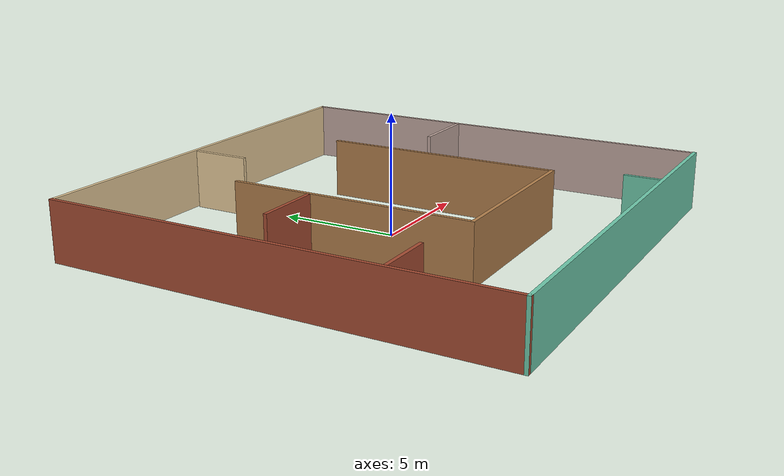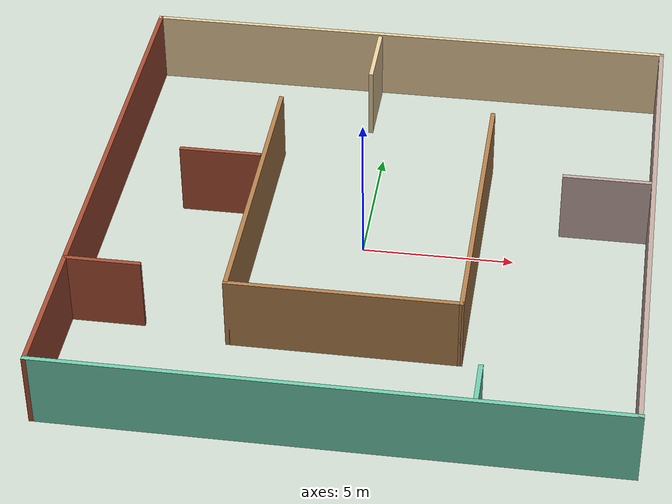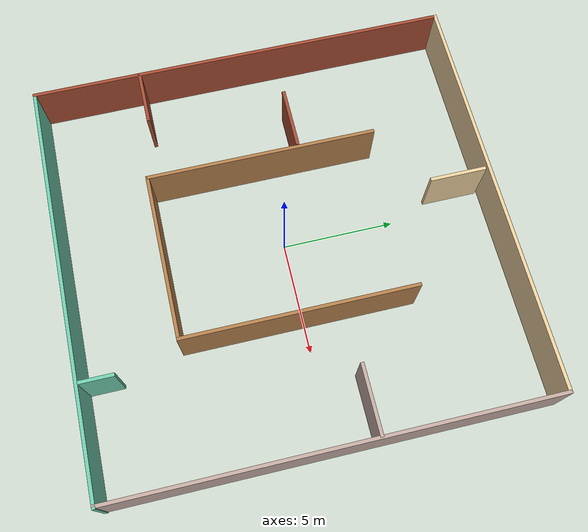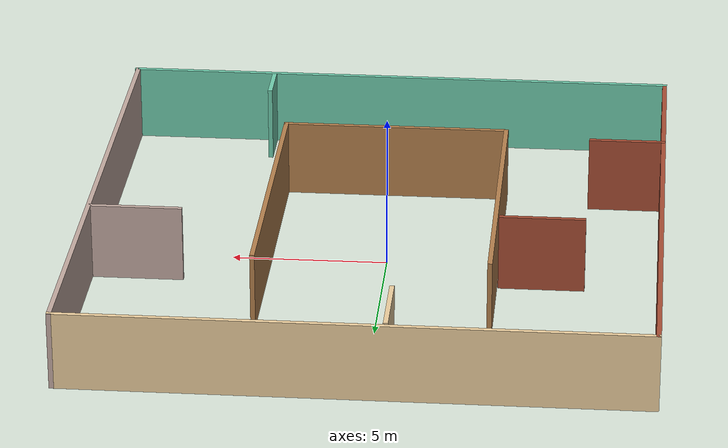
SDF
<?xml version='1.0'?>
<sdf version='1.6'>
  <model name='test_building'>
    <pose frame=''>0.322349 -0.088201 0 0 -0 0</pose>
    <link name='Wall_1'>
      <collision name='Wall_1_Collision'>
        <geometry>
          <box>
            <size>19 0.15 2.5</size>
          </box>
        </geometry>
        <pose frame=''>0 0 1.25 0 -0 0</pose>
      </collision>
      <visual name='Wall_1_Visual'>
        <pose frame=''>0 0 1.25 0 -0 0</pose>
        <geometry>
          <box>
            <size>19 0.15 2.5</size>
          </box>
        </geometry>
        <material>
          <script>
            <uri>file://media/materials/scripts/gazebo.material</uri>
            <name>Gazebo/Grey</name>
          </script>
          <ambient>0.760784 0.662745 0.627451 1</ambient>
        </material>
      </visual>
      <pose frame=''>9.06759 0 0 0 0 -1.5708</pose>
    </link>
    <link name='Wall_10'>
      <collision name='Wall_10_Collision'>
        <geometry>
          <box>
            <size>7.5 0.15 2.5</size>
          </box>
        </geometry>
        <pose frame=''>0 0 1.25 0 -0 0</pose>
      </collision>
      <visual name='Wall_10_Visual'>
        <pose frame=''>0 0 1.25 0 -0 0</pose>
        <geometry>
          <box>
            <size>7.5 0.15 2.5</size>
          </box>
        </geometry>
        <material>
          <script>
            <uri>file://media/materials/scripts/gazebo.material</uri>
            <name>Gazebo/Wood</name>
          </script>
          <ambient>1 1 1 1</ambient>
        </material>
      </visual>
      <pose frame=''>-0.203696 -5.16672 0 0 -0 0</pose>
    </link>
    <link name='Wall_11'>
      <collision name='Wall_11_Collision'>
        <geometry>
          <box>
            <size>10.25 0.15 2.5</size>
          </box>
        </geometry>
        <pose frame=''>0 0 1.25 0 -0 0</pose>
      </collision>
      <visual name='Wall_11_Visual'>
        <pose frame=''>0 0 1.25 0 -0 0</pose>
        <geometry>
          <box>
            <size>10.25 0.15 2.5</size>
          </box>
        </geometry>
        <material>
          <script>
            <uri>file://media/materials/scripts/gazebo.material</uri>
            <name>Gazebo/Wood</name>
          </script>
          <ambient>1 1 1 1</ambient>
        </material>
      </visual>
      <pose frame=''>3.4713 -0.116718 0 0 -0 1.5708</pose>
    </link>
    <link name='Wall_13'>
      <collision name='Wall_13_Collision'>
        <geometry>
          <box>
            <size>3 0.15 2.5</size>
          </box>
        </geometry>
        <pose frame=''>0 0 1.25 0 -0 0</pose>
      </collision>
      <visual name='Wall_13_Visual'>
        <pose frame=''>0 0 1.25 0 -0 0</pose>
        <geometry>
          <box>
            <size>3 0.15 2.5</size>
          </box>
        </geometry>
        <material>
          <script>
            <uri>file://media/materials/scripts/gazebo.material</uri>
            <name>Gazebo/Grey</name>
          </script>
          <ambient>0.760784 0.662745 0.627451 1</ambient>
        </material>
      </visual>
      <pose frame=''>7.57173 1.76719 0 0 -0 3.14159</pose>
    </link>
    <link name='Wall_15'>
      <collision name='Wall_15_Collision'>
        <geometry>
          <box>
            <size>2.75 0.15 2.5</size>
          </box>
        </geometry>
        <pose frame=''>0 0 1.25 0 -0 0</pose>
      </collision>
      <visual name='Wall_15_Visual'>
        <pose frame=''>0 0 1.25 0 -0 0</pose>
        <geometry>
          <box>
            <size>2.75 0.15 2.5</size>
          </box>
        </geometry>
        <material>
          <script>
            <uri>file://media/materials/scripts/gazebo.material</uri>
            <name>Gazebo/Bricks</name>
          </script>
          <ambient>1 1 1 1</ambient>
        </material>
      </visual>
      <pose frame=''>-5.35834 1.55612 0 0 -0 3.14159</pose>
    </link>
    <link name='Wall_17'>
      <collision name='Wall_17_Collision'>
        <geometry>
          <box>
            <size>2.5 0.15 2.5</size>
          </box>
        </geometry>
        <pose frame=''>0 0 1.25 0 -0 0</pose>
      </collision>
      <visual name='Wall_17_Visual'>
        <pose frame=''>0 0 1.25 0 -0 0</pose>
        <geometry>
          <box>
            <size>2.5 0.15 2.5</size>
          </box>
        </geometry>
        <material>
          <script>
            <uri>file://media/materials/scripts/gazebo.material</uri>
            <name>Gazebo/Bricks</name>
          </script>
          <ambient>1 1 1 1</ambient>
        </material>
      </visual>
      <pose frame=''>-7.91015 -4.63534 0 0 -0 0</pose>
    </link>
    <link name='Wall_19'>
      <collision name='Wall_19_Collision'>
        <geometry>
          <box>
            <size>1.5 0.15 2.5</size>
          </box>
        </geometry>
        <pose frame=''>0 0 1.25 0 -0 0</pose>
      </collision>
      <visual name='Wall_19_Visual'>
        <pose frame=''>0 0 1.25 0 -0 0</pose>
        <geometry>
          <box>
            <size>1.5 0.15 2.5</size>
          </box>
        </geometry>
        <material>
          <script>
            <uri>file://media/materials/scripts/gazebo.material</uri>
            <name>Gazebo/Grey</name>
          </script>
          <ambient>0.435294 0.796078 0.67451 1</ambient>
        </material>
      </visual>
      <pose frame=''>4.31796 -8.61715 0 0 0 -1.5708</pose>
    </link>
    <link name='Wall_2'>
      <collision name='Wall_2_Collision'>
        <geometry>
          <box>
            <size>18.3555 0.15 2.5</size>
          </box>
        </geometry>
        <pose frame=''>0 0 1.25 0 -0 0</pose>
      </collision>
      <visual name='Wall_2_Visual'>
        <pose frame=''>0 0 1.25 0 -0 0</pose>
        <geometry>
          <box>
            <size>18.3555 0.15 2.5</size>
          </box>
        </geometry>
        <material>
          <script>
            <uri>file://media/materials/scripts/gazebo.material</uri>
            <name>Gazebo/Grey</name>
          </script>
          <ambient>0.435294 0.796078 0.67451 1</ambient>
        </material>
      </visual>
      <pose frame=''>1e-06 -9.425 0 0 -0 3.14159</pose>
    </link>
    <link name='Wall_21'>
      <collision name='Wall_21_Collision'>
        <geometry>
          <box>
            <size>2.5 0.15 2.5</size>
          </box>
        </geometry>
        <pose frame=''>0 0 1.25 0 -0 0</pose>
      </collision>
      <visual name='Wall_21_Visual'>
        <pose frame=''>0 0 1.25 0 -0 0</pose>
        <geometry>
          <box>
            <size>2.5 0.15 2.5</size>
          </box>
        </geometry>
        <material>
          <script>
            <uri>file://media/materials/scripts/gazebo.material</uri>
            <name>Gazebo/Grey</name>
          </script>
          <ambient>0.921569 0.807843 0.615686 1</ambient>
        </material>
      </visual>
      <pose frame=''>-1.00246 8.01007 0 0 0 -1.5708</pose>
    </link>
    <link name='Wall_3'>
      <collision name='Wall_3_Collision'>
        <geometry>
          <box>
            <size>19 0.15 2.5</size>
          </box>
        </geometry>
        <pose frame=''>0 0 1.25 0 -0 0</pose>
      </collision>
      <visual name='Wall_3_Visual'>
        <pose frame=''>0 0 1.25 0 -0 0</pose>
        <geometry>
          <box>
            <size>19 0.15 2.5</size>
          </box>
        </geometry>
        <material>
          <script>
            <uri>file://media/materials/scripts/gazebo.material</uri>
            <name>Gazebo/Bricks</name>
          </script>
          <ambient>1 1 1 1</ambient>
        </material>
      </visual>
      <pose frame=''>-9.10277 0 0 0 -0 1.5708</pose>
    </link>
    <link name='Wall_7'>
      <collision name='Wall_7_Collision'>
        <geometry>
          <box>
            <size>18.3204 0.15 2.5</size>
          </box>
        </geometry>
        <pose frame=''>0 0 1.25 0 -0 0</pose>
      </collision>
      <visual name='Wall_7_Visual'>
        <pose frame=''>0 0 1.25 0 -0 0</pose>
        <geometry>
          <box>
            <size>18.3204 0.15 2.5</size>
          </box>
        </geometry>
        <material>
          <script>
            <uri>file://media/materials/scripts/gazebo.material</uri>
            <name>Gazebo/Grey</name>
          </script>
          <ambient>0.921569 0.807843 0.615686 1</ambient>
        </material>
      </visual>
      <pose frame=''>-0.017589 9.425 0 0 -0 3.14159</pose>
    </link>
    <link name='Wall_9'>
      <collision name='Wall_9_Collision'>
        <geometry>
          <box>
            <size>10.25 0.15 2.5</size>
          </box>
        </geometry>
        <pose frame=''>0 0 1.25 0 -0 0</pose>
      </collision>
      <visual name='Wall_9_Visual'>
        <pose frame=''>0 0 1.25 0 -0 0</pose>
        <geometry>
          <box>
            <size>10.25 0.15 2.5</size>
          </box>
        </geometry>
        <material>
          <script>
            <uri>file://media/materials/scripts/gazebo.material</uri>
            <name>Gazebo/Wood</name>
          </script>
          <ambient>1 1 1 1</ambient>
        </material>
      </visual>
      <pose frame=''>-3.8787 -0.116718 0 0 0 -1.5708</pose>
    </link>
    <static>1</static>
  </model>
</sdf>
